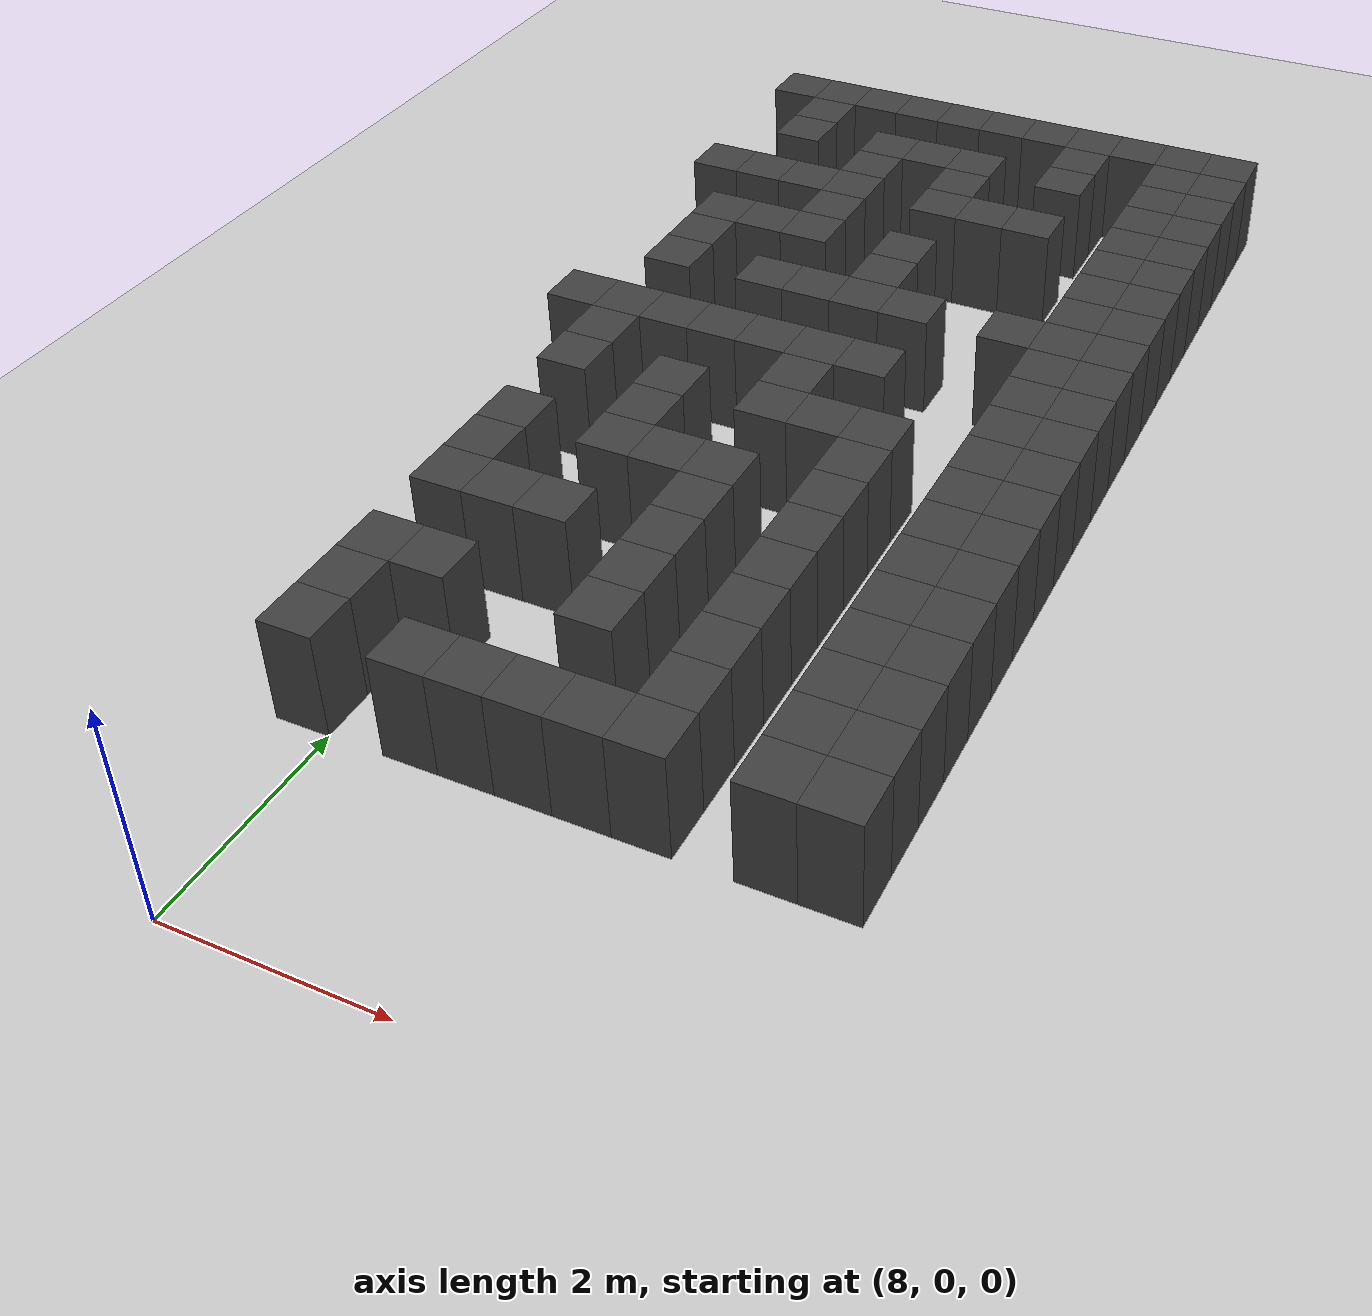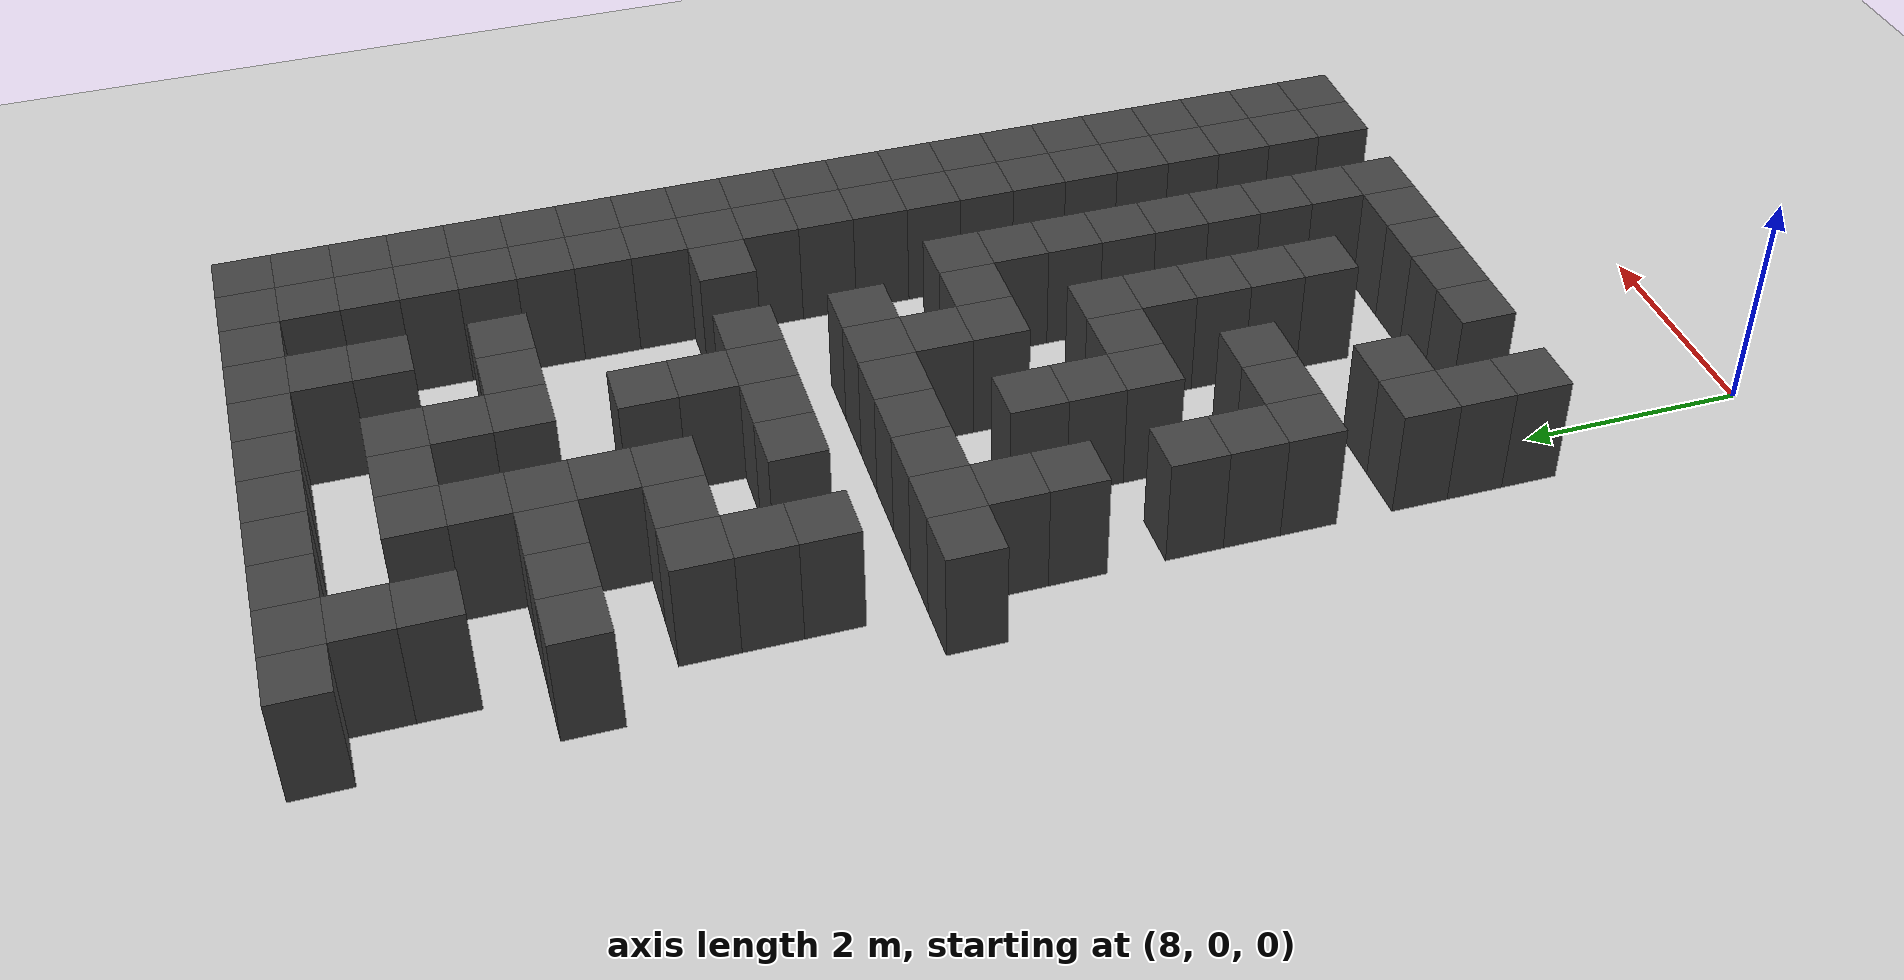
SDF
<sdf version="1.7">
 <world name="map_16271">
  <model name="ground_plane">
   <static>true</static>
   <link name="link">
    <collision name="collision">
     <geometry><plane><normal>0 0 1</normal><size>200 200</size></plane></geometry>
    </collision>
    <visual name="visual">
     <geometry><plane><normal>0 0 1</normal><size>200 200</size></plane></geometry>
     <material><ambient>0.8 0.8 0.8 1</ambient><diffuse>0.8 0.8 0.8 1</diffuse></material>
    </visual>
   </link>
  </model>
  <model name="maze_environment">
   <static>true</static>
   <link name="wall_39">
    <pose>7.250 12.250 0.500 0 0 0</pose>
    <collision name="col"><geometry><box><size>0.5 0.5 1.0</size></box></geometry></collision>
    <visual name="vis">
     <geometry><box><size>0.5 0.5 1.0</size></box></geometry>
     <material><ambient>0.15 0.15 0.15 1</ambient><diffuse>0.25 0.25 0.25 1</diffuse></material>
    </visual>
   </link>
   <link name="wall_40">
    <pose>7.750 12.250 0.500 0 0 0</pose>
    <collision name="col"><geometry><box><size>0.5 0.5 1.0</size></box></geometry></collision>
    <visual name="vis">
     <geometry><box><size>0.5 0.5 1.0</size></box></geometry>
     <material><ambient>0.15 0.15 0.15 1</ambient><diffuse>0.25 0.25 0.25 1</diffuse></material>
    </visual>
   </link>
   <link name="wall_41">
    <pose>8.250 12.250 0.500 0 0 0</pose>
    <collision name="col"><geometry><box><size>0.5 0.5 1.0</size></box></geometry></collision>
    <visual name="vis">
     <geometry><box><size>0.5 0.5 1.0</size></box></geometry>
     <material><ambient>0.15 0.15 0.15 1</ambient><diffuse>0.25 0.25 0.25 1</diffuse></material>
    </visual>
   </link>
   <link name="wall_42">
    <pose>8.750 12.250 0.500 0 0 0</pose>
    <collision name="col"><geometry><box><size>0.5 0.5 1.0</size></box></geometry></collision>
    <visual name="vis">
     <geometry><box><size>0.5 0.5 1.0</size></box></geometry>
     <material><ambient>0.15 0.15 0.15 1</ambient><diffuse>0.25 0.25 0.25 1</diffuse></material>
    </visual>
   </link>
   <link name="wall_43">
    <pose>9.250 12.250 0.500 0 0 0</pose>
    <collision name="col"><geometry><box><size>0.5 0.5 1.0</size></box></geometry></collision>
    <visual name="vis">
     <geometry><box><size>0.5 0.5 1.0</size></box></geometry>
     <material><ambient>0.15 0.15 0.15 1</ambient><diffuse>0.25 0.25 0.25 1</diffuse></material>
    </visual>
   </link>
   <link name="wall_44">
    <pose>9.750 12.250 0.500 0 0 0</pose>
    <collision name="col"><geometry><box><size>0.5 0.5 1.0</size></box></geometry></collision>
    <visual name="vis">
     <geometry><box><size>0.5 0.5 1.0</size></box></geometry>
     <material><ambient>0.15 0.15 0.15 1</ambient><diffuse>0.25 0.25 0.25 1</diffuse></material>
    </visual>
   </link>
   <link name="wall_45">
    <pose>10.250 12.250 0.500 0 0 0</pose>
    <collision name="col"><geometry><box><size>0.5 0.5 1.0</size></box></geometry></collision>
    <visual name="vis">
     <geometry><box><size>0.5 0.5 1.0</size></box></geometry>
     <material><ambient>0.15 0.15 0.15 1</ambient><diffuse>0.25 0.25 0.25 1</diffuse></material>
    </visual>
   </link>
   <link name="wall_46">
    <pose>10.750 12.250 0.500 0 0 0</pose>
    <collision name="col"><geometry><box><size>0.5 0.5 1.0</size></box></geometry></collision>
    <visual name="vis">
     <geometry><box><size>0.5 0.5 1.0</size></box></geometry>
     <material><ambient>0.15 0.15 0.15 1</ambient><diffuse>0.25 0.25 0.25 1</diffuse></material>
    </visual>
   </link>
   <link name="wall_47">
    <pose>11.250 12.250 0.500 0 0 0</pose>
    <collision name="col"><geometry><box><size>0.5 0.5 1.0</size></box></geometry></collision>
    <visual name="vis">
     <geometry><box><size>0.5 0.5 1.0</size></box></geometry>
     <material><ambient>0.15 0.15 0.15 1</ambient><diffuse>0.25 0.25 0.25 1</diffuse></material>
    </visual>
   </link>
   <link name="wall_48">
    <pose>11.750 12.250 0.500 0 0 0</pose>
    <collision name="col"><geometry><box><size>0.5 0.5 1.0</size></box></geometry></collision>
    <visual name="vis">
     <geometry><box><size>0.5 0.5 1.0</size></box></geometry>
     <material><ambient>0.15 0.15 0.15 1</ambient><diffuse>0.25 0.25 0.25 1</diffuse></material>
    </visual>
   </link>
   <link name="wall_49">
    <pose>12.250 12.250 0.500 0 0 0</pose>
    <collision name="col"><geometry><box><size>0.5 0.5 1.0</size></box></geometry></collision>
    <visual name="vis">
     <geometry><box><size>0.5 0.5 1.0</size></box></geometry>
     <material><ambient>0.15 0.15 0.15 1</ambient><diffuse>0.25 0.25 0.25 1</diffuse></material>
    </visual>
   </link>
   <link name="wall_54">
    <pose>7.750 11.750 0.500 0 0 0</pose>
    <collision name="col"><geometry><box><size>0.5 0.5 1.0</size></box></geometry></collision>
    <visual name="vis">
     <geometry><box><size>0.5 0.5 1.0</size></box></geometry>
     <material><ambient>0.15 0.15 0.15 1</ambient><diffuse>0.25 0.25 0.25 1</diffuse></material>
    </visual>
   </link>
   <link name="wall_55">
    <pose>10.750 11.750 0.500 0 0 0</pose>
    <collision name="col"><geometry><box><size>0.5 0.5 1.0</size></box></geometry></collision>
    <visual name="vis">
     <geometry><box><size>0.5 0.5 1.0</size></box></geometry>
     <material><ambient>0.15 0.15 0.15 1</ambient><diffuse>0.25 0.25 0.25 1</diffuse></material>
    </visual>
   </link>
   <link name="wall_56">
    <pose>11.750 11.750 0.500 0 0 0</pose>
    <collision name="col"><geometry><box><size>0.5 0.5 1.0</size></box></geometry></collision>
    <visual name="vis">
     <geometry><box><size>0.5 0.5 1.0</size></box></geometry>
     <material><ambient>0.15 0.15 0.15 1</ambient><diffuse>0.25 0.25 0.25 1</diffuse></material>
    </visual>
   </link>
   <link name="wall_57">
    <pose>12.250 11.750 0.500 0 0 0</pose>
    <collision name="col"><geometry><box><size>0.5 0.5 1.0</size></box></geometry></collision>
    <visual name="vis">
     <geometry><box><size>0.5 0.5 1.0</size></box></geometry>
     <material><ambient>0.15 0.15 0.15 1</ambient><diffuse>0.25 0.25 0.25 1</diffuse></material>
    </visual>
   </link>
   <link name="wall_88">
    <pose>7.750 11.250 0.500 0 0 0</pose>
    <collision name="col"><geometry><box><size>0.5 0.5 1.0</size></box></geometry></collision>
    <visual name="vis">
     <geometry><box><size>0.5 0.5 1.0</size></box></geometry>
     <material><ambient>0.15 0.15 0.15 1</ambient><diffuse>0.25 0.25 0.25 1</diffuse></material>
    </visual>
   </link>
   <link name="wall_89">
    <pose>8.750 11.250 0.500 0 0 0</pose>
    <collision name="col"><geometry><box><size>0.5 0.5 1.0</size></box></geometry></collision>
    <visual name="vis">
     <geometry><box><size>0.5 0.5 1.0</size></box></geometry>
     <material><ambient>0.15 0.15 0.15 1</ambient><diffuse>0.25 0.25 0.25 1</diffuse></material>
    </visual>
   </link>
   <link name="wall_90">
    <pose>9.250 11.250 0.500 0 0 0</pose>
    <collision name="col"><geometry><box><size>0.5 0.5 1.0</size></box></geometry></collision>
    <visual name="vis">
     <geometry><box><size>0.5 0.5 1.0</size></box></geometry>
     <material><ambient>0.15 0.15 0.15 1</ambient><diffuse>0.25 0.25 0.25 1</diffuse></material>
    </visual>
   </link>
   <link name="wall_91">
    <pose>9.750 11.250 0.500 0 0 0</pose>
    <collision name="col"><geometry><box><size>0.5 0.5 1.0</size></box></geometry></collision>
    <visual name="vis">
     <geometry><box><size>0.5 0.5 1.0</size></box></geometry>
     <material><ambient>0.15 0.15 0.15 1</ambient><diffuse>0.25 0.25 0.25 1</diffuse></material>
    </visual>
   </link>
   <link name="wall_92">
    <pose>10.750 11.250 0.500 0 0 0</pose>
    <collision name="col"><geometry><box><size>0.5 0.5 1.0</size></box></geometry></collision>
    <visual name="vis">
     <geometry><box><size>0.5 0.5 1.0</size></box></geometry>
     <material><ambient>0.15 0.15 0.15 1</ambient><diffuse>0.25 0.25 0.25 1</diffuse></material>
    </visual>
   </link>
   <link name="wall_93">
    <pose>11.750 11.250 0.500 0 0 0</pose>
    <collision name="col"><geometry><box><size>0.5 0.5 1.0</size></box></geometry></collision>
    <visual name="vis">
     <geometry><box><size>0.5 0.5 1.0</size></box></geometry>
     <material><ambient>0.15 0.15 0.15 1</ambient><diffuse>0.25 0.25 0.25 1</diffuse></material>
    </visual>
   </link>
   <link name="wall_94">
    <pose>12.250 11.250 0.500 0 0 0</pose>
    <collision name="col"><geometry><box><size>0.5 0.5 1.0</size></box></geometry></collision>
    <visual name="vis">
     <geometry><box><size>0.5 0.5 1.0</size></box></geometry>
     <material><ambient>0.15 0.15 0.15 1</ambient><diffuse>0.25 0.25 0.25 1</diffuse></material>
    </visual>
   </link>
   <link name="wall_102">
    <pose>8.750 10.750 0.500 0 0 0</pose>
    <collision name="col"><geometry><box><size>0.5 0.5 1.0</size></box></geometry></collision>
    <visual name="vis">
     <geometry><box><size>0.5 0.5 1.0</size></box></geometry>
     <material><ambient>0.15 0.15 0.15 1</ambient><diffuse>0.25 0.25 0.25 1</diffuse></material>
    </visual>
   </link>
   <link name="wall_103">
    <pose>9.750 10.750 0.500 0 0 0</pose>
    <collision name="col"><geometry><box><size>0.5 0.5 1.0</size></box></geometry></collision>
    <visual name="vis">
     <geometry><box><size>0.5 0.5 1.0</size></box></geometry>
     <material><ambient>0.15 0.15 0.15 1</ambient><diffuse>0.25 0.25 0.25 1</diffuse></material>
    </visual>
   </link>
   <link name="wall_104">
    <pose>11.750 10.750 0.500 0 0 0</pose>
    <collision name="col"><geometry><box><size>0.5 0.5 1.0</size></box></geometry></collision>
    <visual name="vis">
     <geometry><box><size>0.5 0.5 1.0</size></box></geometry>
     <material><ambient>0.15 0.15 0.15 1</ambient><diffuse>0.25 0.25 0.25 1</diffuse></material>
    </visual>
   </link>
   <link name="wall_105">
    <pose>12.250 10.750 0.500 0 0 0</pose>
    <collision name="col"><geometry><box><size>0.5 0.5 1.0</size></box></geometry></collision>
    <visual name="vis">
     <geometry><box><size>0.5 0.5 1.0</size></box></geometry>
     <material><ambient>0.15 0.15 0.15 1</ambient><diffuse>0.25 0.25 0.25 1</diffuse></material>
    </visual>
   </link>
   <link name="wall_139">
    <pose>7.250 10.250 0.500 0 0 0</pose>
    <collision name="col"><geometry><box><size>0.5 0.5 1.0</size></box></geometry></collision>
    <visual name="vis">
     <geometry><box><size>0.5 0.5 1.0</size></box></geometry>
     <material><ambient>0.15 0.15 0.15 1</ambient><diffuse>0.25 0.25 0.25 1</diffuse></material>
    </visual>
   </link>
   <link name="wall_140">
    <pose>7.750 10.250 0.500 0 0 0</pose>
    <collision name="col"><geometry><box><size>0.5 0.5 1.0</size></box></geometry></collision>
    <visual name="vis">
     <geometry><box><size>0.5 0.5 1.0</size></box></geometry>
     <material><ambient>0.15 0.15 0.15 1</ambient><diffuse>0.25 0.25 0.25 1</diffuse></material>
    </visual>
   </link>
   <link name="wall_141">
    <pose>8.250 10.250 0.500 0 0 0</pose>
    <collision name="col"><geometry><box><size>0.5 0.5 1.0</size></box></geometry></collision>
    <visual name="vis">
     <geometry><box><size>0.5 0.5 1.0</size></box></geometry>
     <material><ambient>0.15 0.15 0.15 1</ambient><diffuse>0.25 0.25 0.25 1</diffuse></material>
    </visual>
   </link>
   <link name="wall_142">
    <pose>8.750 10.250 0.500 0 0 0</pose>
    <collision name="col"><geometry><box><size>0.5 0.5 1.0</size></box></geometry></collision>
    <visual name="vis">
     <geometry><box><size>0.5 0.5 1.0</size></box></geometry>
     <material><ambient>0.15 0.15 0.15 1</ambient><diffuse>0.25 0.25 0.25 1</diffuse></material>
    </visual>
   </link>
   <link name="wall_143">
    <pose>9.750 10.250 0.500 0 0 0</pose>
    <collision name="col"><geometry><box><size>0.5 0.5 1.0</size></box></geometry></collision>
    <visual name="vis">
     <geometry><box><size>0.5 0.5 1.0</size></box></geometry>
     <material><ambient>0.15 0.15 0.15 1</ambient><diffuse>0.25 0.25 0.25 1</diffuse></material>
    </visual>
   </link>
   <link name="wall_144">
    <pose>10.250 10.250 0.500 0 0 0</pose>
    <collision name="col"><geometry><box><size>0.5 0.5 1.0</size></box></geometry></collision>
    <visual name="vis">
     <geometry><box><size>0.5 0.5 1.0</size></box></geometry>
     <material><ambient>0.15 0.15 0.15 1</ambient><diffuse>0.25 0.25 0.25 1</diffuse></material>
    </visual>
   </link>
   <link name="wall_145">
    <pose>10.750 10.250 0.500 0 0 0</pose>
    <collision name="col"><geometry><box><size>0.5 0.5 1.0</size></box></geometry></collision>
    <visual name="vis">
     <geometry><box><size>0.5 0.5 1.0</size></box></geometry>
     <material><ambient>0.15 0.15 0.15 1</ambient><diffuse>0.25 0.25 0.25 1</diffuse></material>
    </visual>
   </link>
   <link name="wall_146">
    <pose>11.750 10.250 0.500 0 0 0</pose>
    <collision name="col"><geometry><box><size>0.5 0.5 1.0</size></box></geometry></collision>
    <visual name="vis">
     <geometry><box><size>0.5 0.5 1.0</size></box></geometry>
     <material><ambient>0.15 0.15 0.15 1</ambient><diffuse>0.25 0.25 0.25 1</diffuse></material>
    </visual>
   </link>
   <link name="wall_147">
    <pose>12.250 10.250 0.500 0 0 0</pose>
    <collision name="col"><geometry><box><size>0.5 0.5 1.0</size></box></geometry></collision>
    <visual name="vis">
     <geometry><box><size>0.5 0.5 1.0</size></box></geometry>
     <material><ambient>0.15 0.15 0.15 1</ambient><diffuse>0.25 0.25 0.25 1</diffuse></material>
    </visual>
   </link>
   <link name="wall_156">
    <pose>8.750 9.750 0.500 0 0 0</pose>
    <collision name="col"><geometry><box><size>0.5 0.5 1.0</size></box></geometry></collision>
    <visual name="vis">
     <geometry><box><size>0.5 0.5 1.0</size></box></geometry>
     <material><ambient>0.15 0.15 0.15 1</ambient><diffuse>0.25 0.25 0.25 1</diffuse></material>
    </visual>
   </link>
   <link name="wall_157">
    <pose>11.750 9.750 0.500 0 0 0</pose>
    <collision name="col"><geometry><box><size>0.5 0.5 1.0</size></box></geometry></collision>
    <visual name="vis">
     <geometry><box><size>0.5 0.5 1.0</size></box></geometry>
     <material><ambient>0.15 0.15 0.15 1</ambient><diffuse>0.25 0.25 0.25 1</diffuse></material>
    </visual>
   </link>
   <link name="wall_158">
    <pose>12.250 9.750 0.500 0 0 0</pose>
    <collision name="col"><geometry><box><size>0.5 0.5 1.0</size></box></geometry></collision>
    <visual name="vis">
     <geometry><box><size>0.5 0.5 1.0</size></box></geometry>
     <material><ambient>0.15 0.15 0.15 1</ambient><diffuse>0.25 0.25 0.25 1</diffuse></material>
    </visual>
   </link>
   <link name="wall_184">
    <pose>7.750 9.250 0.500 0 0 0</pose>
    <collision name="col"><geometry><box><size>0.5 0.5 1.0</size></box></geometry></collision>
    <visual name="vis">
     <geometry><box><size>0.5 0.5 1.0</size></box></geometry>
     <material><ambient>0.15 0.15 0.15 1</ambient><diffuse>0.25 0.25 0.25 1</diffuse></material>
    </visual>
   </link>
   <link name="wall_185">
    <pose>8.250 9.250 0.500 0 0 0</pose>
    <collision name="col"><geometry><box><size>0.5 0.5 1.0</size></box></geometry></collision>
    <visual name="vis">
     <geometry><box><size>0.5 0.5 1.0</size></box></geometry>
     <material><ambient>0.15 0.15 0.15 1</ambient><diffuse>0.25 0.25 0.25 1</diffuse></material>
    </visual>
   </link>
   <link name="wall_186">
    <pose>8.750 9.250 0.500 0 0 0</pose>
    <collision name="col"><geometry><box><size>0.5 0.5 1.0</size></box></geometry></collision>
    <visual name="vis">
     <geometry><box><size>0.5 0.5 1.0</size></box></geometry>
     <material><ambient>0.15 0.15 0.15 1</ambient><diffuse>0.25 0.25 0.25 1</diffuse></material>
    </visual>
   </link>
   <link name="wall_187">
    <pose>9.750 9.250 0.500 0 0 0</pose>
    <collision name="col"><geometry><box><size>0.5 0.5 1.0</size></box></geometry></collision>
    <visual name="vis">
     <geometry><box><size>0.5 0.5 1.0</size></box></geometry>
     <material><ambient>0.15 0.15 0.15 1</ambient><diffuse>0.25 0.25 0.25 1</diffuse></material>
    </visual>
   </link>
   <link name="wall_188">
    <pose>11.750 9.250 0.500 0 0 0</pose>
    <collision name="col"><geometry><box><size>0.5 0.5 1.0</size></box></geometry></collision>
    <visual name="vis">
     <geometry><box><size>0.5 0.5 1.0</size></box></geometry>
     <material><ambient>0.15 0.15 0.15 1</ambient><diffuse>0.25 0.25 0.25 1</diffuse></material>
    </visual>
   </link>
   <link name="wall_189">
    <pose>12.250 9.250 0.500 0 0 0</pose>
    <collision name="col"><geometry><box><size>0.5 0.5 1.0</size></box></geometry></collision>
    <visual name="vis">
     <geometry><box><size>0.5 0.5 1.0</size></box></geometry>
     <material><ambient>0.15 0.15 0.15 1</ambient><diffuse>0.25 0.25 0.25 1</diffuse></material>
    </visual>
   </link>
   <link name="wall_202">
    <pose>7.750 8.750 0.500 0 0 0</pose>
    <collision name="col"><geometry><box><size>0.5 0.5 1.0</size></box></geometry></collision>
    <visual name="vis">
     <geometry><box><size>0.5 0.5 1.0</size></box></geometry>
     <material><ambient>0.15 0.15 0.15 1</ambient><diffuse>0.25 0.25 0.25 1</diffuse></material>
    </visual>
   </link>
   <link name="wall_203">
    <pose>9.750 8.750 0.500 0 0 0</pose>
    <collision name="col"><geometry><box><size>0.5 0.5 1.0</size></box></geometry></collision>
    <visual name="vis">
     <geometry><box><size>0.5 0.5 1.0</size></box></geometry>
     <material><ambient>0.15 0.15 0.15 1</ambient><diffuse>0.25 0.25 0.25 1</diffuse></material>
    </visual>
   </link>
   <link name="wall_204">
    <pose>11.750 8.750 0.500 0 0 0</pose>
    <collision name="col"><geometry><box><size>0.5 0.5 1.0</size></box></geometry></collision>
    <visual name="vis">
     <geometry><box><size>0.5 0.5 1.0</size></box></geometry>
     <material><ambient>0.15 0.15 0.15 1</ambient><diffuse>0.25 0.25 0.25 1</diffuse></material>
    </visual>
   </link>
   <link name="wall_205">
    <pose>12.250 8.750 0.500 0 0 0</pose>
    <collision name="col"><geometry><box><size>0.5 0.5 1.0</size></box></geometry></collision>
    <visual name="vis">
     <geometry><box><size>0.5 0.5 1.0</size></box></geometry>
     <material><ambient>0.15 0.15 0.15 1</ambient><diffuse>0.25 0.25 0.25 1</diffuse></material>
    </visual>
   </link>
   <link name="wall_230">
    <pose>7.750 8.250 0.500 0 0 0</pose>
    <collision name="col"><geometry><box><size>0.5 0.5 1.0</size></box></geometry></collision>
    <visual name="vis">
     <geometry><box><size>0.5 0.5 1.0</size></box></geometry>
     <material><ambient>0.15 0.15 0.15 1</ambient><diffuse>0.25 0.25 0.25 1</diffuse></material>
    </visual>
   </link>
   <link name="wall_231">
    <pose>8.750 8.250 0.500 0 0 0</pose>
    <collision name="col"><geometry><box><size>0.5 0.5 1.0</size></box></geometry></collision>
    <visual name="vis">
     <geometry><box><size>0.5 0.5 1.0</size></box></geometry>
     <material><ambient>0.15 0.15 0.15 1</ambient><diffuse>0.25 0.25 0.25 1</diffuse></material>
    </visual>
   </link>
   <link name="wall_232">
    <pose>9.250 8.250 0.500 0 0 0</pose>
    <collision name="col"><geometry><box><size>0.5 0.5 1.0</size></box></geometry></collision>
    <visual name="vis">
     <geometry><box><size>0.5 0.5 1.0</size></box></geometry>
     <material><ambient>0.15 0.15 0.15 1</ambient><diffuse>0.25 0.25 0.25 1</diffuse></material>
    </visual>
   </link>
   <link name="wall_233">
    <pose>9.750 8.250 0.500 0 0 0</pose>
    <collision name="col"><geometry><box><size>0.5 0.5 1.0</size></box></geometry></collision>
    <visual name="vis">
     <geometry><box><size>0.5 0.5 1.0</size></box></geometry>
     <material><ambient>0.15 0.15 0.15 1</ambient><diffuse>0.25 0.25 0.25 1</diffuse></material>
    </visual>
   </link>
   <link name="wall_234">
    <pose>10.250 8.250 0.500 0 0 0</pose>
    <collision name="col"><geometry><box><size>0.5 0.5 1.0</size></box></geometry></collision>
    <visual name="vis">
     <geometry><box><size>0.5 0.5 1.0</size></box></geometry>
     <material><ambient>0.15 0.15 0.15 1</ambient><diffuse>0.25 0.25 0.25 1</diffuse></material>
    </visual>
   </link>
   <link name="wall_235">
    <pose>11.250 8.250 0.500 0 0 0</pose>
    <collision name="col"><geometry><box><size>0.5 0.5 1.0</size></box></geometry></collision>
    <visual name="vis">
     <geometry><box><size>0.5 0.5 1.0</size></box></geometry>
     <material><ambient>0.15 0.15 0.15 1</ambient><diffuse>0.25 0.25 0.25 1</diffuse></material>
    </visual>
   </link>
   <link name="wall_236">
    <pose>11.750 8.250 0.500 0 0 0</pose>
    <collision name="col"><geometry><box><size>0.5 0.5 1.0</size></box></geometry></collision>
    <visual name="vis">
     <geometry><box><size>0.5 0.5 1.0</size></box></geometry>
     <material><ambient>0.15 0.15 0.15 1</ambient><diffuse>0.25 0.25 0.25 1</diffuse></material>
    </visual>
   </link>
   <link name="wall_237">
    <pose>12.250 8.250 0.500 0 0 0</pose>
    <collision name="col"><geometry><box><size>0.5 0.5 1.0</size></box></geometry></collision>
    <visual name="vis">
     <geometry><box><size>0.5 0.5 1.0</size></box></geometry>
     <material><ambient>0.15 0.15 0.15 1</ambient><diffuse>0.25 0.25 0.25 1</diffuse></material>
    </visual>
   </link>
   <link name="wall_248">
    <pose>11.750 7.750 0.500 0 0 0</pose>
    <collision name="col"><geometry><box><size>0.5 0.5 1.0</size></box></geometry></collision>
    <visual name="vis">
     <geometry><box><size>0.5 0.5 1.0</size></box></geometry>
     <material><ambient>0.15 0.15 0.15 1</ambient><diffuse>0.25 0.25 0.25 1</diffuse></material>
    </visual>
   </link>
   <link name="wall_249">
    <pose>12.250 7.750 0.500 0 0 0</pose>
    <collision name="col"><geometry><box><size>0.5 0.5 1.0</size></box></geometry></collision>
    <visual name="vis">
     <geometry><box><size>0.5 0.5 1.0</size></box></geometry>
     <material><ambient>0.15 0.15 0.15 1</ambient><diffuse>0.25 0.25 0.25 1</diffuse></material>
    </visual>
   </link>
   <link name="wall_278">
    <pose>7.250 7.250 0.500 0 0 0</pose>
    <collision name="col"><geometry><box><size>0.5 0.5 1.0</size></box></geometry></collision>
    <visual name="vis">
     <geometry><box><size>0.5 0.5 1.0</size></box></geometry>
     <material><ambient>0.15 0.15 0.15 1</ambient><diffuse>0.25 0.25 0.25 1</diffuse></material>
    </visual>
   </link>
   <link name="wall_279">
    <pose>7.750 7.250 0.500 0 0 0</pose>
    <collision name="col"><geometry><box><size>0.5 0.5 1.0</size></box></geometry></collision>
    <visual name="vis">
     <geometry><box><size>0.5 0.5 1.0</size></box></geometry>
     <material><ambient>0.15 0.15 0.15 1</ambient><diffuse>0.25 0.25 0.25 1</diffuse></material>
    </visual>
   </link>
   <link name="wall_280">
    <pose>8.250 7.250 0.500 0 0 0</pose>
    <collision name="col"><geometry><box><size>0.5 0.5 1.0</size></box></geometry></collision>
    <visual name="vis">
     <geometry><box><size>0.5 0.5 1.0</size></box></geometry>
     <material><ambient>0.15 0.15 0.15 1</ambient><diffuse>0.25 0.25 0.25 1</diffuse></material>
    </visual>
   </link>
   <link name="wall_281">
    <pose>8.750 7.250 0.500 0 0 0</pose>
    <collision name="col"><geometry><box><size>0.5 0.5 1.0</size></box></geometry></collision>
    <visual name="vis">
     <geometry><box><size>0.5 0.5 1.0</size></box></geometry>
     <material><ambient>0.15 0.15 0.15 1</ambient><diffuse>0.25 0.25 0.25 1</diffuse></material>
    </visual>
   </link>
   <link name="wall_282">
    <pose>9.250 7.250 0.500 0 0 0</pose>
    <collision name="col"><geometry><box><size>0.5 0.5 1.0</size></box></geometry></collision>
    <visual name="vis">
     <geometry><box><size>0.5 0.5 1.0</size></box></geometry>
     <material><ambient>0.15 0.15 0.15 1</ambient><diffuse>0.25 0.25 0.25 1</diffuse></material>
    </visual>
   </link>
   <link name="wall_283">
    <pose>9.750 7.250 0.500 0 0 0</pose>
    <collision name="col"><geometry><box><size>0.5 0.5 1.0</size></box></geometry></collision>
    <visual name="vis">
     <geometry><box><size>0.5 0.5 1.0</size></box></geometry>
     <material><ambient>0.15 0.15 0.15 1</ambient><diffuse>0.25 0.25 0.25 1</diffuse></material>
    </visual>
   </link>
   <link name="wall_284">
    <pose>10.250 7.250 0.500 0 0 0</pose>
    <collision name="col"><geometry><box><size>0.5 0.5 1.0</size></box></geometry></collision>
    <visual name="vis">
     <geometry><box><size>0.5 0.5 1.0</size></box></geometry>
     <material><ambient>0.15 0.15 0.15 1</ambient><diffuse>0.25 0.25 0.25 1</diffuse></material>
    </visual>
   </link>
   <link name="wall_285">
    <pose>11.750 7.250 0.500 0 0 0</pose>
    <collision name="col"><geometry><box><size>0.5 0.5 1.0</size></box></geometry></collision>
    <visual name="vis">
     <geometry><box><size>0.5 0.5 1.0</size></box></geometry>
     <material><ambient>0.15 0.15 0.15 1</ambient><diffuse>0.25 0.25 0.25 1</diffuse></material>
    </visual>
   </link>
   <link name="wall_286">
    <pose>12.250 7.250 0.500 0 0 0</pose>
    <collision name="col"><geometry><box><size>0.5 0.5 1.0</size></box></geometry></collision>
    <visual name="vis">
     <geometry><box><size>0.5 0.5 1.0</size></box></geometry>
     <material><ambient>0.15 0.15 0.15 1</ambient><diffuse>0.25 0.25 0.25 1</diffuse></material>
    </visual>
   </link>
   <link name="wall_292">
    <pose>7.750 6.750 0.500 0 0 0</pose>
    <collision name="col"><geometry><box><size>0.5 0.5 1.0</size></box></geometry></collision>
    <visual name="vis">
     <geometry><box><size>0.5 0.5 1.0</size></box></geometry>
     <material><ambient>0.15 0.15 0.15 1</ambient><diffuse>0.25 0.25 0.25 1</diffuse></material>
    </visual>
   </link>
   <link name="wall_293">
    <pose>9.750 6.750 0.500 0 0 0</pose>
    <collision name="col"><geometry><box><size>0.5 0.5 1.0</size></box></geometry></collision>
    <visual name="vis">
     <geometry><box><size>0.5 0.5 1.0</size></box></geometry>
     <material><ambient>0.15 0.15 0.15 1</ambient><diffuse>0.25 0.25 0.25 1</diffuse></material>
    </visual>
   </link>
   <link name="wall_294">
    <pose>11.750 6.750 0.500 0 0 0</pose>
    <collision name="col"><geometry><box><size>0.5 0.5 1.0</size></box></geometry></collision>
    <visual name="vis">
     <geometry><box><size>0.5 0.5 1.0</size></box></geometry>
     <material><ambient>0.15 0.15 0.15 1</ambient><diffuse>0.25 0.25 0.25 1</diffuse></material>
    </visual>
   </link>
   <link name="wall_295">
    <pose>12.250 6.750 0.500 0 0 0</pose>
    <collision name="col"><geometry><box><size>0.5 0.5 1.0</size></box></geometry></collision>
    <visual name="vis">
     <geometry><box><size>0.5 0.5 1.0</size></box></geometry>
     <material><ambient>0.15 0.15 0.15 1</ambient><diffuse>0.25 0.25 0.25 1</diffuse></material>
    </visual>
   </link>
   <link name="wall_325">
    <pose>7.750 6.250 0.500 0 0 0</pose>
    <collision name="col"><geometry><box><size>0.5 0.5 1.0</size></box></geometry></collision>
    <visual name="vis">
     <geometry><box><size>0.5 0.5 1.0</size></box></geometry>
     <material><ambient>0.15 0.15 0.15 1</ambient><diffuse>0.25 0.25 0.25 1</diffuse></material>
    </visual>
   </link>
   <link name="wall_326">
    <pose>8.750 6.250 0.500 0 0 0</pose>
    <collision name="col"><geometry><box><size>0.5 0.5 1.0</size></box></geometry></collision>
    <visual name="vis">
     <geometry><box><size>0.5 0.5 1.0</size></box></geometry>
     <material><ambient>0.15 0.15 0.15 1</ambient><diffuse>0.25 0.25 0.25 1</diffuse></material>
    </visual>
   </link>
   <link name="wall_327">
    <pose>9.750 6.250 0.500 0 0 0</pose>
    <collision name="col"><geometry><box><size>0.5 0.5 1.0</size></box></geometry></collision>
    <visual name="vis">
     <geometry><box><size>0.5 0.5 1.0</size></box></geometry>
     <material><ambient>0.15 0.15 0.15 1</ambient><diffuse>0.25 0.25 0.25 1</diffuse></material>
    </visual>
   </link>
   <link name="wall_328">
    <pose>10.250 6.250 0.500 0 0 0</pose>
    <collision name="col"><geometry><box><size>0.5 0.5 1.0</size></box></geometry></collision>
    <visual name="vis">
     <geometry><box><size>0.5 0.5 1.0</size></box></geometry>
     <material><ambient>0.15 0.15 0.15 1</ambient><diffuse>0.25 0.25 0.25 1</diffuse></material>
    </visual>
   </link>
   <link name="wall_329">
    <pose>10.750 6.250 0.500 0 0 0</pose>
    <collision name="col"><geometry><box><size>0.5 0.5 1.0</size></box></geometry></collision>
    <visual name="vis">
     <geometry><box><size>0.5 0.5 1.0</size></box></geometry>
     <material><ambient>0.15 0.15 0.15 1</ambient><diffuse>0.25 0.25 0.25 1</diffuse></material>
    </visual>
   </link>
   <link name="wall_330">
    <pose>11.750 6.250 0.500 0 0 0</pose>
    <collision name="col"><geometry><box><size>0.5 0.5 1.0</size></box></geometry></collision>
    <visual name="vis">
     <geometry><box><size>0.5 0.5 1.0</size></box></geometry>
     <material><ambient>0.15 0.15 0.15 1</ambient><diffuse>0.25 0.25 0.25 1</diffuse></material>
    </visual>
   </link>
   <link name="wall_331">
    <pose>12.250 6.250 0.500 0 0 0</pose>
    <collision name="col"><geometry><box><size>0.5 0.5 1.0</size></box></geometry></collision>
    <visual name="vis">
     <geometry><box><size>0.5 0.5 1.0</size></box></geometry>
     <material><ambient>0.15 0.15 0.15 1</ambient><diffuse>0.25 0.25 0.25 1</diffuse></material>
    </visual>
   </link>
   <link name="wall_339">
    <pose>8.750 5.750 0.500 0 0 0</pose>
    <collision name="col"><geometry><box><size>0.5 0.5 1.0</size></box></geometry></collision>
    <visual name="vis">
     <geometry><box><size>0.5 0.5 1.0</size></box></geometry>
     <material><ambient>0.15 0.15 0.15 1</ambient><diffuse>0.25 0.25 0.25 1</diffuse></material>
    </visual>
   </link>
   <link name="wall_340">
    <pose>10.750 5.750 0.500 0 0 0</pose>
    <collision name="col"><geometry><box><size>0.5 0.5 1.0</size></box></geometry></collision>
    <visual name="vis">
     <geometry><box><size>0.5 0.5 1.0</size></box></geometry>
     <material><ambient>0.15 0.15 0.15 1</ambient><diffuse>0.25 0.25 0.25 1</diffuse></material>
    </visual>
   </link>
   <link name="wall_341">
    <pose>11.750 5.750 0.500 0 0 0</pose>
    <collision name="col"><geometry><box><size>0.5 0.5 1.0</size></box></geometry></collision>
    <visual name="vis">
     <geometry><box><size>0.5 0.5 1.0</size></box></geometry>
     <material><ambient>0.15 0.15 0.15 1</ambient><diffuse>0.25 0.25 0.25 1</diffuse></material>
    </visual>
   </link>
   <link name="wall_342">
    <pose>12.250 5.750 0.500 0 0 0</pose>
    <collision name="col"><geometry><box><size>0.5 0.5 1.0</size></box></geometry></collision>
    <visual name="vis">
     <geometry><box><size>0.5 0.5 1.0</size></box></geometry>
     <material><ambient>0.15 0.15 0.15 1</ambient><diffuse>0.25 0.25 0.25 1</diffuse></material>
    </visual>
   </link>
   <link name="wall_374">
    <pose>7.750 5.250 0.500 0 0 0</pose>
    <collision name="col"><geometry><box><size>0.5 0.5 1.0</size></box></geometry></collision>
    <visual name="vis">
     <geometry><box><size>0.5 0.5 1.0</size></box></geometry>
     <material><ambient>0.15 0.15 0.15 1</ambient><diffuse>0.25 0.25 0.25 1</diffuse></material>
    </visual>
   </link>
   <link name="wall_375">
    <pose>8.750 5.250 0.500 0 0 0</pose>
    <collision name="col"><geometry><box><size>0.5 0.5 1.0</size></box></geometry></collision>
    <visual name="vis">
     <geometry><box><size>0.5 0.5 1.0</size></box></geometry>
     <material><ambient>0.15 0.15 0.15 1</ambient><diffuse>0.25 0.25 0.25 1</diffuse></material>
    </visual>
   </link>
   <link name="wall_376">
    <pose>9.250 5.250 0.500 0 0 0</pose>
    <collision name="col"><geometry><box><size>0.5 0.5 1.0</size></box></geometry></collision>
    <visual name="vis">
     <geometry><box><size>0.5 0.5 1.0</size></box></geometry>
     <material><ambient>0.15 0.15 0.15 1</ambient><diffuse>0.25 0.25 0.25 1</diffuse></material>
    </visual>
   </link>
   <link name="wall_377">
    <pose>9.750 5.250 0.500 0 0 0</pose>
    <collision name="col"><geometry><box><size>0.5 0.5 1.0</size></box></geometry></collision>
    <visual name="vis">
     <geometry><box><size>0.5 0.5 1.0</size></box></geometry>
     <material><ambient>0.15 0.15 0.15 1</ambient><diffuse>0.25 0.25 0.25 1</diffuse></material>
    </visual>
   </link>
   <link name="wall_378">
    <pose>10.750 5.250 0.500 0 0 0</pose>
    <collision name="col"><geometry><box><size>0.5 0.5 1.0</size></box></geometry></collision>
    <visual name="vis">
     <geometry><box><size>0.5 0.5 1.0</size></box></geometry>
     <material><ambient>0.15 0.15 0.15 1</ambient><diffuse>0.25 0.25 0.25 1</diffuse></material>
    </visual>
   </link>
   <link name="wall_379">
    <pose>11.750 5.250 0.500 0 0 0</pose>
    <collision name="col"><geometry><box><size>0.5 0.5 1.0</size></box></geometry></collision>
    <visual name="vis">
     <geometry><box><size>0.5 0.5 1.0</size></box></geometry>
     <material><ambient>0.15 0.15 0.15 1</ambient><diffuse>0.25 0.25 0.25 1</diffuse></material>
    </visual>
   </link>
   <link name="wall_380">
    <pose>12.250 5.250 0.500 0 0 0</pose>
    <collision name="col"><geometry><box><size>0.5 0.5 1.0</size></box></geometry></collision>
    <visual name="vis">
     <geometry><box><size>0.5 0.5 1.0</size></box></geometry>
     <material><ambient>0.15 0.15 0.15 1</ambient><diffuse>0.25 0.25 0.25 1</diffuse></material>
    </visual>
   </link>
   <link name="wall_389">
    <pose>7.750 4.750 0.500 0 0 0</pose>
    <collision name="col"><geometry><box><size>0.5 0.5 1.0</size></box></geometry></collision>
    <visual name="vis">
     <geometry><box><size>0.5 0.5 1.0</size></box></geometry>
     <material><ambient>0.15 0.15 0.15 1</ambient><diffuse>0.25 0.25 0.25 1</diffuse></material>
    </visual>
   </link>
   <link name="wall_390">
    <pose>9.750 4.750 0.500 0 0 0</pose>
    <collision name="col"><geometry><box><size>0.5 0.5 1.0</size></box></geometry></collision>
    <visual name="vis">
     <geometry><box><size>0.5 0.5 1.0</size></box></geometry>
     <material><ambient>0.15 0.15 0.15 1</ambient><diffuse>0.25 0.25 0.25 1</diffuse></material>
    </visual>
   </link>
   <link name="wall_391">
    <pose>10.750 4.750 0.500 0 0 0</pose>
    <collision name="col"><geometry><box><size>0.5 0.5 1.0</size></box></geometry></collision>
    <visual name="vis">
     <geometry><box><size>0.5 0.5 1.0</size></box></geometry>
     <material><ambient>0.15 0.15 0.15 1</ambient><diffuse>0.25 0.25 0.25 1</diffuse></material>
    </visual>
   </link>
   <link name="wall_392">
    <pose>11.750 4.750 0.500 0 0 0</pose>
    <collision name="col"><geometry><box><size>0.5 0.5 1.0</size></box></geometry></collision>
    <visual name="vis">
     <geometry><box><size>0.5 0.5 1.0</size></box></geometry>
     <material><ambient>0.15 0.15 0.15 1</ambient><diffuse>0.25 0.25 0.25 1</diffuse></material>
    </visual>
   </link>
   <link name="wall_393">
    <pose>12.250 4.750 0.500 0 0 0</pose>
    <collision name="col"><geometry><box><size>0.5 0.5 1.0</size></box></geometry></collision>
    <visual name="vis">
     <geometry><box><size>0.5 0.5 1.0</size></box></geometry>
     <material><ambient>0.15 0.15 0.15 1</ambient><diffuse>0.25 0.25 0.25 1</diffuse></material>
    </visual>
   </link>
   <link name="wall_419">
    <pose>7.750 4.250 0.500 0 0 0</pose>
    <collision name="col"><geometry><box><size>0.5 0.5 1.0</size></box></geometry></collision>
    <visual name="vis">
     <geometry><box><size>0.5 0.5 1.0</size></box></geometry>
     <material><ambient>0.15 0.15 0.15 1</ambient><diffuse>0.25 0.25 0.25 1</diffuse></material>
    </visual>
   </link>
   <link name="wall_420">
    <pose>8.250 4.250 0.500 0 0 0</pose>
    <collision name="col"><geometry><box><size>0.5 0.5 1.0</size></box></geometry></collision>
    <visual name="vis">
     <geometry><box><size>0.5 0.5 1.0</size></box></geometry>
     <material><ambient>0.15 0.15 0.15 1</ambient><diffuse>0.25 0.25 0.25 1</diffuse></material>
    </visual>
   </link>
   <link name="wall_421">
    <pose>8.750 4.250 0.500 0 0 0</pose>
    <collision name="col"><geometry><box><size>0.5 0.5 1.0</size></box></geometry></collision>
    <visual name="vis">
     <geometry><box><size>0.5 0.5 1.0</size></box></geometry>
     <material><ambient>0.15 0.15 0.15 1</ambient><diffuse>0.25 0.25 0.25 1</diffuse></material>
    </visual>
   </link>
   <link name="wall_422">
    <pose>9.750 4.250 0.500 0 0 0</pose>
    <collision name="col"><geometry><box><size>0.5 0.5 1.0</size></box></geometry></collision>
    <visual name="vis">
     <geometry><box><size>0.5 0.5 1.0</size></box></geometry>
     <material><ambient>0.15 0.15 0.15 1</ambient><diffuse>0.25 0.25 0.25 1</diffuse></material>
    </visual>
   </link>
   <link name="wall_423">
    <pose>10.750 4.250 0.500 0 0 0</pose>
    <collision name="col"><geometry><box><size>0.5 0.5 1.0</size></box></geometry></collision>
    <visual name="vis">
     <geometry><box><size>0.5 0.5 1.0</size></box></geometry>
     <material><ambient>0.15 0.15 0.15 1</ambient><diffuse>0.25 0.25 0.25 1</diffuse></material>
    </visual>
   </link>
   <link name="wall_424">
    <pose>11.750 4.250 0.500 0 0 0</pose>
    <collision name="col"><geometry><box><size>0.5 0.5 1.0</size></box></geometry></collision>
    <visual name="vis">
     <geometry><box><size>0.5 0.5 1.0</size></box></geometry>
     <material><ambient>0.15 0.15 0.15 1</ambient><diffuse>0.25 0.25 0.25 1</diffuse></material>
    </visual>
   </link>
   <link name="wall_425">
    <pose>12.250 4.250 0.500 0 0 0</pose>
    <collision name="col"><geometry><box><size>0.5 0.5 1.0</size></box></geometry></collision>
    <visual name="vis">
     <geometry><box><size>0.5 0.5 1.0</size></box></geometry>
     <material><ambient>0.15 0.15 0.15 1</ambient><diffuse>0.25 0.25 0.25 1</diffuse></material>
    </visual>
   </link>
   <link name="wall_437">
    <pose>9.750 3.750 0.500 0 0 0</pose>
    <collision name="col"><geometry><box><size>0.5 0.5 1.0</size></box></geometry></collision>
    <visual name="vis">
     <geometry><box><size>0.5 0.5 1.0</size></box></geometry>
     <material><ambient>0.15 0.15 0.15 1</ambient><diffuse>0.25 0.25 0.25 1</diffuse></material>
    </visual>
   </link>
   <link name="wall_438">
    <pose>10.750 3.750 0.500 0 0 0</pose>
    <collision name="col"><geometry><box><size>0.5 0.5 1.0</size></box></geometry></collision>
    <visual name="vis">
     <geometry><box><size>0.5 0.5 1.0</size></box></geometry>
     <material><ambient>0.15 0.15 0.15 1</ambient><diffuse>0.25 0.25 0.25 1</diffuse></material>
    </visual>
   </link>
   <link name="wall_439">
    <pose>11.750 3.750 0.500 0 0 0</pose>
    <collision name="col"><geometry><box><size>0.5 0.5 1.0</size></box></geometry></collision>
    <visual name="vis">
     <geometry><box><size>0.5 0.5 1.0</size></box></geometry>
     <material><ambient>0.15 0.15 0.15 1</ambient><diffuse>0.25 0.25 0.25 1</diffuse></material>
    </visual>
   </link>
   <link name="wall_440">
    <pose>12.250 3.750 0.500 0 0 0</pose>
    <collision name="col"><geometry><box><size>0.5 0.5 1.0</size></box></geometry></collision>
    <visual name="vis">
     <geometry><box><size>0.5 0.5 1.0</size></box></geometry>
     <material><ambient>0.15 0.15 0.15 1</ambient><diffuse>0.25 0.25 0.25 1</diffuse></material>
    </visual>
   </link>
   <link name="wall_467">
    <pose>7.750 3.250 0.500 0 0 0</pose>
    <collision name="col"><geometry><box><size>0.5 0.5 1.0</size></box></geometry></collision>
    <visual name="vis">
     <geometry><box><size>0.5 0.5 1.0</size></box></geometry>
     <material><ambient>0.15 0.15 0.15 1</ambient><diffuse>0.25 0.25 0.25 1</diffuse></material>
    </visual>
   </link>
   <link name="wall_468">
    <pose>8.250 3.250 0.500 0 0 0</pose>
    <collision name="col"><geometry><box><size>0.5 0.5 1.0</size></box></geometry></collision>
    <visual name="vis">
     <geometry><box><size>0.5 0.5 1.0</size></box></geometry>
     <material><ambient>0.15 0.15 0.15 1</ambient><diffuse>0.25 0.25 0.25 1</diffuse></material>
    </visual>
   </link>
   <link name="wall_469">
    <pose>9.750 3.250 0.500 0 0 0</pose>
    <collision name="col"><geometry><box><size>0.5 0.5 1.0</size></box></geometry></collision>
    <visual name="vis">
     <geometry><box><size>0.5 0.5 1.0</size></box></geometry>
     <material><ambient>0.15 0.15 0.15 1</ambient><diffuse>0.25 0.25 0.25 1</diffuse></material>
    </visual>
   </link>
   <link name="wall_470">
    <pose>10.750 3.250 0.500 0 0 0</pose>
    <collision name="col"><geometry><box><size>0.5 0.5 1.0</size></box></geometry></collision>
    <visual name="vis">
     <geometry><box><size>0.5 0.5 1.0</size></box></geometry>
     <material><ambient>0.15 0.15 0.15 1</ambient><diffuse>0.25 0.25 0.25 1</diffuse></material>
    </visual>
   </link>
   <link name="wall_471">
    <pose>11.750 3.250 0.500 0 0 0</pose>
    <collision name="col"><geometry><box><size>0.5 0.5 1.0</size></box></geometry></collision>
    <visual name="vis">
     <geometry><box><size>0.5 0.5 1.0</size></box></geometry>
     <material><ambient>0.15 0.15 0.15 1</ambient><diffuse>0.25 0.25 0.25 1</diffuse></material>
    </visual>
   </link>
   <link name="wall_472">
    <pose>12.250 3.250 0.500 0 0 0</pose>
    <collision name="col"><geometry><box><size>0.5 0.5 1.0</size></box></geometry></collision>
    <visual name="vis">
     <geometry><box><size>0.5 0.5 1.0</size></box></geometry>
     <material><ambient>0.15 0.15 0.15 1</ambient><diffuse>0.25 0.25 0.25 1</diffuse></material>
    </visual>
   </link>
   <link name="wall_483">
    <pose>7.750 2.750 0.500 0 0 0</pose>
    <collision name="col"><geometry><box><size>0.5 0.5 1.0</size></box></geometry></collision>
    <visual name="vis">
     <geometry><box><size>0.5 0.5 1.0</size></box></geometry>
     <material><ambient>0.15 0.15 0.15 1</ambient><diffuse>0.25 0.25 0.25 1</diffuse></material>
    </visual>
   </link>
   <link name="wall_484">
    <pose>10.750 2.750 0.500 0 0 0</pose>
    <collision name="col"><geometry><box><size>0.5 0.5 1.0</size></box></geometry></collision>
    <visual name="vis">
     <geometry><box><size>0.5 0.5 1.0</size></box></geometry>
     <material><ambient>0.15 0.15 0.15 1</ambient><diffuse>0.25 0.25 0.25 1</diffuse></material>
    </visual>
   </link>
   <link name="wall_485">
    <pose>11.750 2.750 0.500 0 0 0</pose>
    <collision name="col"><geometry><box><size>0.5 0.5 1.0</size></box></geometry></collision>
    <visual name="vis">
     <geometry><box><size>0.5 0.5 1.0</size></box></geometry>
     <material><ambient>0.15 0.15 0.15 1</ambient><diffuse>0.25 0.25 0.25 1</diffuse></material>
    </visual>
   </link>
   <link name="wall_486">
    <pose>12.250 2.750 0.500 0 0 0</pose>
    <collision name="col"><geometry><box><size>0.5 0.5 1.0</size></box></geometry></collision>
    <visual name="vis">
     <geometry><box><size>0.5 0.5 1.0</size></box></geometry>
     <material><ambient>0.15 0.15 0.15 1</ambient><diffuse>0.25 0.25 0.25 1</diffuse></material>
    </visual>
   </link>
   <link name="wall_511">
    <pose>7.750 2.250 0.500 0 0 0</pose>
    <collision name="col"><geometry><box><size>0.5 0.5 1.0</size></box></geometry></collision>
    <visual name="vis">
     <geometry><box><size>0.5 0.5 1.0</size></box></geometry>
     <material><ambient>0.15 0.15 0.15 1</ambient><diffuse>0.25 0.25 0.25 1</diffuse></material>
    </visual>
   </link>
   <link name="wall_512">
    <pose>8.750 2.250 0.500 0 0 0</pose>
    <collision name="col"><geometry><box><size>0.5 0.5 1.0</size></box></geometry></collision>
    <visual name="vis">
     <geometry><box><size>0.5 0.5 1.0</size></box></geometry>
     <material><ambient>0.15 0.15 0.15 1</ambient><diffuse>0.25 0.25 0.25 1</diffuse></material>
    </visual>
   </link>
   <link name="wall_513">
    <pose>9.250 2.250 0.500 0 0 0</pose>
    <collision name="col"><geometry><box><size>0.5 0.5 1.0</size></box></geometry></collision>
    <visual name="vis">
     <geometry><box><size>0.5 0.5 1.0</size></box></geometry>
     <material><ambient>0.15 0.15 0.15 1</ambient><diffuse>0.25 0.25 0.25 1</diffuse></material>
    </visual>
   </link>
   <link name="wall_514">
    <pose>9.750 2.250 0.500 0 0 0</pose>
    <collision name="col"><geometry><box><size>0.5 0.5 1.0</size></box></geometry></collision>
    <visual name="vis">
     <geometry><box><size>0.5 0.5 1.0</size></box></geometry>
     <material><ambient>0.15 0.15 0.15 1</ambient><diffuse>0.25 0.25 0.25 1</diffuse></material>
    </visual>
   </link>
   <link name="wall_515">
    <pose>10.250 2.250 0.500 0 0 0</pose>
    <collision name="col"><geometry><box><size>0.5 0.5 1.0</size></box></geometry></collision>
    <visual name="vis">
     <geometry><box><size>0.5 0.5 1.0</size></box></geometry>
     <material><ambient>0.15 0.15 0.15 1</ambient><diffuse>0.25 0.25 0.25 1</diffuse></material>
    </visual>
   </link>
   <link name="wall_516">
    <pose>10.750 2.250 0.500 0 0 0</pose>
    <collision name="col"><geometry><box><size>0.5 0.5 1.0</size></box></geometry></collision>
    <visual name="vis">
     <geometry><box><size>0.5 0.5 1.0</size></box></geometry>
     <material><ambient>0.15 0.15 0.15 1</ambient><diffuse>0.25 0.25 0.25 1</diffuse></material>
    </visual>
   </link>
   <link name="wall_517">
    <pose>11.750 2.250 0.500 0 0 0</pose>
    <collision name="col"><geometry><box><size>0.5 0.5 1.0</size></box></geometry></collision>
    <visual name="vis">
     <geometry><box><size>0.5 0.5 1.0</size></box></geometry>
     <material><ambient>0.15 0.15 0.15 1</ambient><diffuse>0.25 0.25 0.25 1</diffuse></material>
    </visual>
   </link>
   <link name="wall_518">
    <pose>12.250 2.250 0.500 0 0 0</pose>
    <collision name="col"><geometry><box><size>0.5 0.5 1.0</size></box></geometry></collision>
    <visual name="vis">
     <geometry><box><size>0.5 0.5 1.0</size></box></geometry>
     <material><ambient>0.15 0.15 0.15 1</ambient><diffuse>0.25 0.25 0.25 1</diffuse></material>
    </visual>
   </link>
  </model>
 </world>
</sdf>
